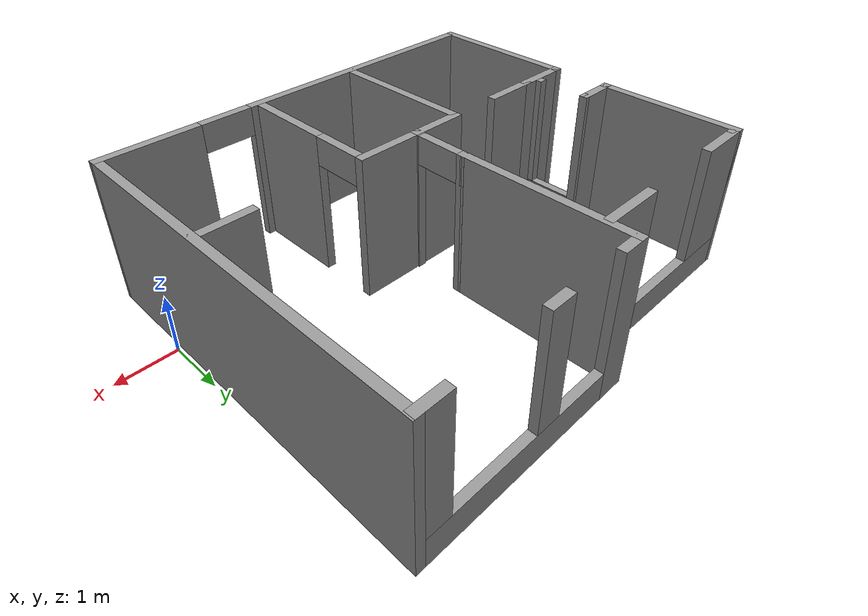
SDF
<?xml version='1.0'?>
<sdf version='1.6'>
  <model name='room'>
    <pose frame=''>-3.81765 1.64001 0 0 -0 0</pose>
    <link name='Wall_13'>
      <collision name='Wall_13_Collision'>
        <geometry>
          <box>
            <size>6.62192 0.15 2.5</size>
          </box>
        </geometry>
        <pose frame=''>0 0 1.25 0 -0 0</pose>
      </collision>
      <visual name='Wall_13_Visual'>
        <pose frame=''>0 0 1.25 0 -0 0</pose>
        <geometry>
          <box>
            <size>6.62192 0.15 2.5</size>
          </box>
        </geometry>
        <material>
          <script>
            <uri>file://media/materials/scripts/gazebo.material</uri>
            <name>Gazebo/Grey</name>
          </script>
          <ambient>1 1 1 1</ambient>
        </material>
        <meta>
          <layer>0</layer>
        </meta>
      </visual>
      <pose frame=''>3.68311 0 0 0 0 -1.57099</pose>
    </link>
    <link name='Wall_14'>
      <pose frame=''>0.007476 -3.2356 0 0 -0 3.14159</pose>
      <visual name='Wall_14_Visual_0'>
        <pose frame=''>-2.88848 0 1.25 0 -0 0</pose>
        <geometry>
          <box>
            <size>1.72305 0.15 2.5</size>
          </box>
        </geometry>
        <material>
          <script>
            <uri>file://media/materials/scripts/gazebo.material</uri>
            <name>Gazebo/Grey</name>
          </script>
          <ambient>1 1 1 1</ambient>
        </material>
        <meta>
          <layer>0</layer>
        </meta>
      </visual>
      <collision name='Wall_14_Collision_0'>
        <geometry>
          <box>
            <size>1.72305 0.15 2.5</size>
          </box>
        </geometry>
        <pose frame=''>-2.88848 0 1.25 0 -0 0</pose>
      </collision>
      <visual name='Wall_14_Visual_1'>
        <pose frame=''>1.31153 0 1.25 0 -0 0</pose>
        <geometry>
          <box>
            <size>4.87695 0.15 2.5</size>
          </box>
        </geometry>
        <material>
          <script>
            <uri>file://media/materials/scripts/gazebo.material</uri>
            <name>Gazebo/Grey</name>
          </script>
          <ambient>1 1 1 1</ambient>
        </material>
        <meta>
          <layer>0</layer>
        </meta>
      </visual>
      <collision name='Wall_14_Collision_1'>
        <geometry>
          <box>
            <size>4.87695 0.15 2.5</size>
          </box>
        </geometry>
        <pose frame=''>1.31153 0 1.25 0 -0 0</pose>
      </collision>
      <visual name='Wall_14_Visual_2'>
        <pose frame=''>-1.57695 0 2.25 0 -0 0</pose>
        <geometry>
          <box>
            <size>0.9 0.15 0.5</size>
          </box>
        </geometry>
        <material>
          <script>
            <uri>file://media/materials/scripts/gazebo.material</uri>
            <name>Gazebo/Grey</name>
          </script>
          <ambient>1 1 1 1</ambient>
        </material>
        <meta>
          <layer>0</layer>
        </meta>
      </visual>
      <collision name='Wall_14_Collision_2'>
        <geometry>
          <box>
            <size>0.9 0.15 0.5</size>
          </box>
        </geometry>
        <pose frame=''>-1.57695 0 2.25 0 -0 0</pose>
      </collision>
    </link>
    <link name='Wall_16'>
      <collision name='Wall_16_Collision'>
        <geometry>
          <box>
            <size>2.75 0.15 2.5</size>
          </box>
        </geometry>
        <pose frame=''>0 0 1.25 0 -0 0</pose>
      </collision>
      <visual name='Wall_16_Visual'>
        <pose frame=''>0 0 1.25 0 -0 0</pose>
        <geometry>
          <box>
            <size>2.75 0.15 2.5</size>
          </box>
        </geometry>
        <material>
          <script>
            <uri>file://media/materials/scripts/gazebo.material</uri>
            <name>Gazebo/Grey</name>
          </script>
          <ambient>1 1 1 1</ambient>
        </material>
        <meta>
          <layer>0</layer>
        </meta>
      </visual>
      <pose frame=''>-3.66752 -1.9356 0 0 -0 1.5708</pose>
    </link>
    <link name='Wall_18'>
      <collision name='Wall_18_Collision'>
        <geometry>
          <box>
            <size>1 0.15 2.5</size>
          </box>
        </geometry>
        <pose frame=''>0 0 1.25 0 -0 0</pose>
      </collision>
      <visual name='Wall_18_Visual'>
        <pose frame=''>0 0 1.25 0 -0 0</pose>
        <geometry>
          <box>
            <size>1 0.15 2.5</size>
          </box>
        </geometry>
        <material>
          <script>
            <uri>file://media/materials/scripts/gazebo.material</uri>
            <name>Gazebo/Grey</name>
          </script>
          <ambient>1 1 1 1</ambient>
        </material>
        <meta>
          <layer>0</layer>
        </meta>
      </visual>
      <pose frame=''>-3.24252 -0.635604 0 0 -0 0</pose>
    </link>
    <link name='Wall_22'>
      <collision name='Wall_22_Collision'>
        <geometry>
          <box>
            <size>3.048 0.15 2.5</size>
          </box>
        </geometry>
        <pose frame=''>0 0 1.25 0 -0 0</pose>
      </collision>
      <visual name='Wall_22_Visual'>
        <pose frame=''>0 0 1.25 0 -0 0</pose>
        <geometry>
          <box>
            <size>3.048 0.15 2.5</size>
          </box>
        </geometry>
        <material>
          <script>
            <uri>file://media/materials/scripts/gazebo.material</uri>
            <name>Gazebo/Grey</name>
          </script>
          <ambient>1 1 1 1</ambient>
        </material>
        <meta>
          <layer>0</layer>
        </meta>
      </visual>
      <pose frame=''>-0.152502 1.7866 0 0 0 -1.5708</pose>
    </link>
    <link name='Wall_24'>
      <collision name='Wall_24_Collision'>
        <geometry>
          <box>
            <size>1.25 0.15 2.5</size>
          </box>
        </geometry>
        <pose frame=''>0 0 1.25 0 -0 0</pose>
      </collision>
      <visual name='Wall_24_Visual'>
        <pose frame=''>0 0 1.25 0 -0 0</pose>
        <geometry>
          <box>
            <size>1.25 0.15 2.5</size>
          </box>
        </geometry>
        <material>
          <script>
            <uri>file://media/materials/scripts/gazebo.material</uri>
            <name>Gazebo/Grey</name>
          </script>
          <ambient>1 1 1 1</ambient>
        </material>
        <meta>
          <layer>0</layer>
        </meta>
      </visual>
      <pose frame=''>0.386851 -0.635466 0 0 -0 0</pose>
    </link>
    <link name='Wall_26'>
      <collision name='Wall_26_Collision'>
        <geometry>
          <box>
            <size>1 0.15 2.5</size>
          </box>
        </geometry>
        <pose frame=''>0 0 1.25 0 -0 0</pose>
      </collision>
      <visual name='Wall_26_Visual'>
        <pose frame=''>0 0 1.25 0 -0 0</pose>
        <geometry>
          <box>
            <size>1 0.15 2.5</size>
          </box>
        </geometry>
        <material>
          <script>
            <uri>file://media/materials/scripts/gazebo.material</uri>
            <name>Gazebo/Grey</name>
          </script>
          <ambient>1 1 1 1</ambient>
        </material>
        <meta>
          <layer>0</layer>
        </meta>
      </visual>
      <pose frame=''>3.25414 -0.611225 0 0 -0 3.14159</pose>
    </link>
    <link name='Wall_28'>
      <pose frame=''>-0.157825 -0.148931 0 0 0 -1.58174</pose>
      <visual name='Wall_28_Visual_0'>
        <pose frame=''>-0.538046 0 1.25 0 -0 0</pose>
        <geometry>
          <box>
            <size>0.047036 0.15 2.5</size>
          </box>
        </geometry>
        <material>
          <script>
            <uri>file://media/materials/scripts/gazebo.material</uri>
            <name>Gazebo/Grey</name>
          </script>
          <ambient>1 1 1 1</ambient>
        </material>
        <meta>
          <layer>0</layer>
        </meta>
      </visual>
      <collision name='Wall_28_Collision_0'>
        <geometry>
          <box>
            <size>0.047036 0.15 2.5</size>
          </box>
        </geometry>
        <pose frame=''>-0.538046 0 1.25 0 -0 0</pose>
      </collision>
      <visual name='Wall_28_Visual_1'>
        <pose frame=''>0.473518 0 1.25 0 -0 0</pose>
        <geometry>
          <box>
            <size>0.176093 0.15 2.5</size>
          </box>
        </geometry>
        <material>
          <script>
            <uri>file://media/materials/scripts/gazebo.material</uri>
            <name>Gazebo/Grey</name>
          </script>
          <ambient>1 1 1 1</ambient>
        </material>
        <meta>
          <layer>0</layer>
        </meta>
      </visual>
      <collision name='Wall_28_Collision_1'>
        <geometry>
          <box>
            <size>0.176093 0.15 2.5</size>
          </box>
        </geometry>
        <pose frame=''>0.473518 0 1.25 0 -0 0</pose>
      </collision>
      <visual name='Wall_28_Visual_2'>
        <pose frame=''>-0.064528 0 2.25 0 -0 0</pose>
        <geometry>
          <box>
            <size>0.9 0.15 0.5</size>
          </box>
        </geometry>
        <material>
          <script>
            <uri>file://media/materials/scripts/gazebo.material</uri>
            <name>Gazebo/Grey</name>
          </script>
          <ambient>1 1 1 1</ambient>
        </material>
        <meta>
          <layer>0</layer>
        </meta>
      </visual>
      <collision name='Wall_28_Collision_2'>
        <geometry>
          <box>
            <size>0.9 0.15 0.5</size>
          </box>
        </geometry>
        <pose frame=''>-0.064528 0 2.25 0 -0 0</pose>
      </collision>
    </link>
    <link name='Wall_32'>
      <pose frame=''>-1.90875 2.77411 0 0 -0 3.14159</pose>
      <visual name='Wall_32_Visual_0'>
        <pose frame=''>-1.21246 0 1.25 0 -0 0</pose>
        <geometry>
          <box>
            <size>1.07508 0.15 2.5</size>
          </box>
        </geometry>
        <material>
          <script>
            <uri>file://media/materials/scripts/gazebo.material</uri>
            <name>Gazebo/Grey</name>
          </script>
          <ambient>1 1 1 1</ambient>
        </material>
        <meta>
          <layer>0</layer>
        </meta>
      </visual>
      <collision name='Wall_32_Collision_0'>
        <geometry>
          <box>
            <size>1.07508 0.15 2.5</size>
          </box>
        </geometry>
        <pose frame=''>-1.21246 0 1.25 0 -0 0</pose>
      </collision>
      <visual name='Wall_32_Visual_1'>
        <pose frame=''>0.537538 0 0.25 0 -0 0</pose>
        <geometry>
          <box>
            <size>2.42492 0.15 0.5</size>
          </box>
        </geometry>
        <material>
          <script>
            <uri>file://media/materials/scripts/gazebo.material</uri>
            <name>Gazebo/Grey</name>
          </script>
          <ambient>1 1 1 1</ambient>
        </material>
        <meta>
          <layer>0</layer>
        </meta>
      </visual>
      <collision name='Wall_32_Collision_1'>
        <geometry>
          <box>
            <size>2.42492 0.15 0.5</size>
          </box>
        </geometry>
        <pose frame=''>0.537538 0 0.25 0 -0 0</pose>
      </collision>
      <visual name='Wall_32_Visual_2'>
        <pose frame=''>1.28754 0 1.5 0 -0 0</pose>
        <geometry>
          <box>
            <size>0.924924 0.15 2</size>
          </box>
        </geometry>
        <material>
          <script>
            <uri>file://media/materials/scripts/gazebo.material</uri>
            <name>Gazebo/Grey</name>
          </script>
          <ambient>1 1 1 1</ambient>
        </material>
        <meta>
          <layer>0</layer>
        </meta>
      </visual>
      <collision name='Wall_32_Collision_2'>
        <geometry>
          <box>
            <size>0.924924 0.15 2</size>
          </box>
        </geometry>
        <pose frame=''>1.28754 0 1.5 0 -0 0</pose>
      </collision>
    </link>
    <link name='Wall_34'>
      <collision name='Wall_34_Collision'>
        <geometry>
          <box>
            <size>0.25 0.15 2.5</size>
          </box>
        </geometry>
        <pose frame=''>0 0 1.25 0 -0 0</pose>
      </collision>
      <visual name='Wall_34_Visual'>
        <pose frame=''>0 0 1.25 0 -0 0</pose>
        <geometry>
          <box>
            <size>0.25 0.15 2.5</size>
          </box>
        </geometry>
        <material>
          <script>
            <uri>file://media/materials/scripts/gazebo.material</uri>
            <name>Gazebo/Grey</name>
          </script>
          <ambient>1 1 1 1</ambient>
        </material>
        <meta>
          <layer>0</layer>
        </meta>
      </visual>
      <pose frame=''>-3.63375 2.77411 0 0 -0 3.14159</pose>
    </link>
    <link name='Wall_35'>
      <collision name='Wall_35_Collision'>
        <geometry>
          <box>
            <size>2.5 0.15 2.5</size>
          </box>
        </geometry>
        <pose frame=''>0 0 1.25 0 -0 0</pose>
      </collision>
      <visual name='Wall_35_Visual'>
        <pose frame=''>0 0 1.25 0 -0 0</pose>
        <geometry>
          <box>
            <size>2.5 0.15 2.5</size>
          </box>
        </geometry>
        <material>
          <script>
            <uri>file://media/materials/scripts/gazebo.material</uri>
            <name>Gazebo/Grey</name>
          </script>
          <ambient>1 1 1 1</ambient>
        </material>
        <meta>
          <layer>0</layer>
        </meta>
      </visual>
      <pose frame=''>-3.68376 1.59911 0 0 0 -1.5708</pose>
    </link>
    <link name='Wall_39'>
      <collision name='Wall_39_Collision'>
        <geometry>
          <box>
            <size>0.75 0.15 2.5</size>
          </box>
        </geometry>
        <pose frame=''>0 0 1.25 0 -0 0</pose>
      </collision>
      <visual name='Wall_39_Visual'>
        <pose frame=''>0 0 1.25 0 -0 0</pose>
        <geometry>
          <box>
            <size>0.75 0.15 2.5</size>
          </box>
        </geometry>
        <material>
          <script>
            <uri>file://media/materials/scripts/gazebo.material</uri>
            <name>Gazebo/Grey</name>
          </script>
          <ambient>1 1 1 1</ambient>
        </material>
        <meta>
          <layer>0</layer>
        </meta>
      </visual>
      <pose frame=''>-3.38355 0.424054 0 0 0 -0.0002</pose>
    </link>
    <link name='Wall_41'>
      <collision name='Wall_41_Collision'>
        <geometry>
          <box>
            <size>1 0.15 2.5</size>
          </box>
        </geometry>
        <pose frame=''>0 0 1.25 0 -0 0</pose>
      </collision>
      <visual name='Wall_41_Visual'>
        <pose frame=''>0 0 1.25 0 -0 0</pose>
        <geometry>
          <box>
            <size>1 0.15 2.5</size>
          </box>
        </geometry>
        <material>
          <script>
            <uri>file://media/materials/scripts/gazebo.material</uri>
            <name>Gazebo/Grey</name>
          </script>
          <ambient>1 1 1 1</ambient>
        </material>
        <meta>
          <layer>0</layer>
        </meta>
      </visual>
      <pose frame=''>-2.39252 -0.635604 0 0 -0 0</pose>
    </link>
    <link name='Wall_53'>
      <pose frame=''>-3.08335 -0.058006 0 0 0 -1.5708</pose>
      <visual name='Wall_53_Visual_0'>
        <pose frame=''>-0.481204 0 1.25 0 -0 0</pose>
        <geometry>
          <box>
            <size>0.151592 0.15 2.5</size>
          </box>
        </geometry>
        <material>
          <script>
            <uri>file://media/materials/scripts/gazebo.material</uri>
            <name>Gazebo/Grey</name>
          </script>
          <ambient>1 1 1 1</ambient>
        </material>
        <meta>
          <layer>0</layer>
        </meta>
      </visual>
      <collision name='Wall_53_Collision_0'>
        <geometry>
          <box>
            <size>0.151592 0.15 2.5</size>
          </box>
        </geometry>
        <pose frame=''>-0.481204 0 1.25 0 -0 0</pose>
      </collision>
      <visual name='Wall_53_Visual_1'>
        <pose frame=''>0.075796 0 0.25 0 -0 0</pose>
        <geometry>
          <box>
            <size>0.962408 0.15 0.5</size>
          </box>
        </geometry>
        <material>
          <script>
            <uri>file://media/materials/scripts/gazebo.material</uri>
            <name>Gazebo/Grey</name>
          </script>
          <ambient>1 1 1 1</ambient>
        </material>
        <meta>
          <layer>0</layer>
        </meta>
      </visual>
      <collision name='Wall_53_Collision_1'>
        <geometry>
          <box>
            <size>0.962408 0.15 0.5</size>
          </box>
        </geometry>
        <pose frame=''>0.075796 0 0.25 0 -0 0</pose>
      </collision>
      <visual name='Wall_53_Visual_2'>
        <pose frame=''>0.475796 0 1.5 0 -0 0</pose>
        <geometry>
          <box>
            <size>0.162408 0.15 2</size>
          </box>
        </geometry>
        <material>
          <script>
            <uri>file://media/materials/scripts/gazebo.material</uri>
            <name>Gazebo/Grey</name>
          </script>
          <ambient>1 1 1 1</ambient>
        </material>
        <meta>
          <layer>0</layer>
        </meta>
      </visual>
      <collision name='Wall_53_Collision_2'>
        <geometry>
          <box>
            <size>0.162408 0.15 2</size>
          </box>
        </geometry>
        <pose frame=''>0.475796 0 1.5 0 -0 0</pose>
      </collision>
    </link>
    <link name='Wall_55'>
      <collision name='Wall_55_Collision'>
        <geometry>
          <box>
            <size>1 0.15 2.5</size>
          </box>
        </geometry>
        <pose frame=''>0 0 1.25 0 -0 0</pose>
      </collision>
      <visual name='Wall_55_Visual'>
        <pose frame=''>0 0 1.25 0 -0 0</pose>
        <geometry>
          <box>
            <size>1 0.15 2.5</size>
          </box>
        </geometry>
        <material>
          <script>
            <uri>file://media/materials/scripts/gazebo.material</uri>
            <name>Gazebo/Grey</name>
          </script>
          <ambient>1 1 1 1</ambient>
        </material>
        <meta>
          <layer>0</layer>
        </meta>
      </visual>
      <pose frame=''>-0.588149 -0.635466 0 0 -0 3.14159</pose>
    </link>
    <link name='Wall_56'>
      <collision name='Wall_56_Collision'>
        <geometry>
          <box>
            <size>2.75 0.15 2.5</size>
          </box>
        </geometry>
        <pose frame=''>0 0 1.25 0 -0 0</pose>
      </collision>
      <visual name='Wall_56_Visual'>
        <pose frame=''>0 0 1.25 0 -0 0</pose>
        <geometry>
          <box>
            <size>2.75 0.15 2.5</size>
          </box>
        </geometry>
        <material>
          <script>
            <uri>file://media/materials/scripts/gazebo.material</uri>
            <name>Gazebo/Grey</name>
          </script>
          <ambient>1 1 1 1</ambient>
        </material>
        <meta>
          <layer>0</layer>
        </meta>
      </visual>
      <pose frame=''>-1.01315 -1.93547 0 0 0 -1.5708</pose>
    </link>
    <link name='Wall_60'>
      <pose frame=''>0.936852 -1.93547 0 0 0 -1.5708</pose>
      <visual name='Wall_60_Visual_0'>
        <pose frame=''>-1.29738 0 1.25 0 -0 0</pose>
        <geometry>
          <box>
            <size>0.155245 0.15 2.5</size>
          </box>
        </geometry>
        <material>
          <script>
            <uri>file://media/materials/scripts/gazebo.material</uri>
            <name>Gazebo/Grey</name>
          </script>
          <ambient>1 1 1 1</ambient>
        </material>
        <meta>
          <layer>0</layer>
        </meta>
      </visual>
      <collision name='Wall_60_Collision_0'>
        <geometry>
          <box>
            <size>0.155245 0.15 2.5</size>
          </box>
        </geometry>
        <pose frame=''>-1.29738 0 1.25 0 -0 0</pose>
      </collision>
      <visual name='Wall_60_Visual_1'>
        <pose frame=''>0.527623 0 1.25 0 -0 0</pose>
        <geometry>
          <box>
            <size>1.69476 0.15 2.5</size>
          </box>
        </geometry>
        <material>
          <script>
            <uri>file://media/materials/scripts/gazebo.material</uri>
            <name>Gazebo/Grey</name>
          </script>
          <ambient>1 1 1 1</ambient>
        </material>
        <meta>
          <layer>0</layer>
        </meta>
      </visual>
      <collision name='Wall_60_Collision_1'>
        <geometry>
          <box>
            <size>1.69476 0.15 2.5</size>
          </box>
        </geometry>
        <pose frame=''>0.527623 0 1.25 0 -0 0</pose>
      </collision>
      <visual name='Wall_60_Visual_2'>
        <pose frame=''>-0.769755 0 2.25 0 -0 0</pose>
        <geometry>
          <box>
            <size>0.9 0.15 0.5</size>
          </box>
        </geometry>
        <material>
          <script>
            <uri>file://media/materials/scripts/gazebo.material</uri>
            <name>Gazebo/Grey</name>
          </script>
          <ambient>1 1 1 1</ambient>
        </material>
        <meta>
          <layer>0</layer>
        </meta>
      </visual>
      <collision name='Wall_60_Collision_2'>
        <geometry>
          <box>
            <size>0.9 0.15 0.5</size>
          </box>
        </geometry>
        <pose frame=''>-0.769755 0 2.25 0 -0 0</pose>
      </collision>
    </link>
    <link name='Wall_9'>
      <pose frame=''>1.7535 3.2356 0 0 -0 0</pose>
      <visual name='Wall_9_Visual_0'>
        <pose frame=''>-1.73618 0 1.25 0 -0 0</pose>
        <geometry>
          <box>
            <size>0.489646 0.15 2.5</size>
          </box>
        </geometry>
        <material>
          <script>
            <uri>file://media/materials/scripts/gazebo.material</uri>
            <name>Gazebo/Grey</name>
          </script>
          <ambient>1 1 1 1</ambient>
        </material>
        <meta>
          <layer>0</layer>
        </meta>
      </visual>
      <collision name='Wall_9_Collision_0'>
        <geometry>
          <box>
            <size>0.489646 0.15 2.5</size>
          </box>
        </geometry>
        <pose frame=''>-1.73618 0 1.25 0 -0 0</pose>
      </collision>
      <visual name='Wall_9_Visual_1'>
        <pose frame=''>0.244823 0 0.25 0 -0 0</pose>
        <geometry>
          <box>
            <size>3.47235 0.15 0.5</size>
          </box>
        </geometry>
        <material>
          <script>
            <uri>file://media/materials/scripts/gazebo.material</uri>
            <name>Gazebo/Grey</name>
          </script>
          <ambient>1 1 1 1</ambient>
        </material>
        <meta>
          <layer>0</layer>
        </meta>
      </visual>
      <collision name='Wall_9_Collision_1'>
        <geometry>
          <box>
            <size>3.47235 0.15 0.5</size>
          </box>
        </geometry>
        <pose frame=''>0.244823 0 0.25 0 -0 0</pose>
      </collision>
      <visual name='Wall_9_Visual_2'>
        <pose frame=''>-0.276625 0 1.5 0 -0 0</pose>
        <geometry>
          <box>
            <size>0.429458 0.15 2</size>
          </box>
        </geometry>
        <material>
          <script>
            <uri>file://media/materials/scripts/gazebo.material</uri>
            <name>Gazebo/Grey</name>
          </script>
          <ambient>1 1 1 1</ambient>
        </material>
        <meta>
          <layer>0</layer>
        </meta>
      </visual>
      <collision name='Wall_9_Collision_2'>
        <geometry>
          <box>
            <size>0.429458 0.15 2</size>
          </box>
        </geometry>
        <pose frame=''>-0.276625 0 1.5 0 -0 0</pose>
      </collision>
      <visual name='Wall_9_Visual_3'>
        <pose frame=''>1.70955 0 1.5 0 -0 0</pose>
        <geometry>
          <box>
            <size>0.542896 0.15 2</size>
          </box>
        </geometry>
        <material>
          <script>
            <uri>file://media/materials/scripts/gazebo.material</uri>
            <name>Gazebo/Grey</name>
          </script>
          <ambient>1 1 1 1</ambient>
        </material>
        <meta>
          <layer>0</layer>
        </meta>
      </visual>
      <collision name='Wall_9_Collision_3'>
        <geometry>
          <box>
            <size>0.542896 0.15 2</size>
          </box>
        </geometry>
        <pose frame=''>1.70955 0 1.5 0 -0 0</pose>
      </collision>
    </link>
    <static>1</static>
  </model>
</sdf>
